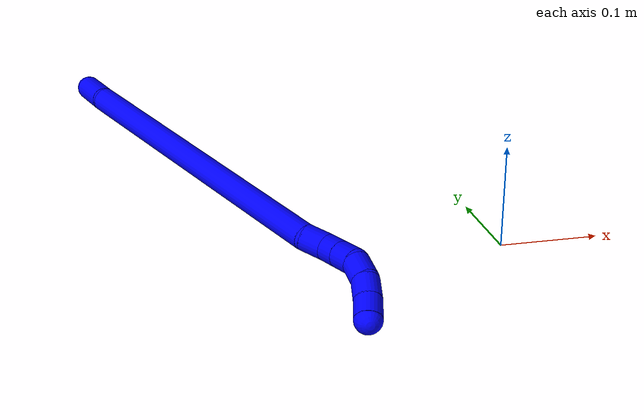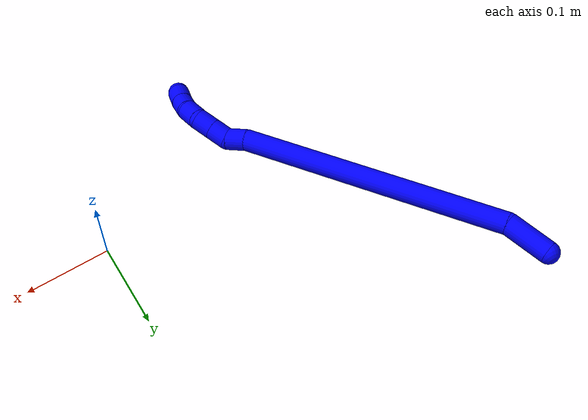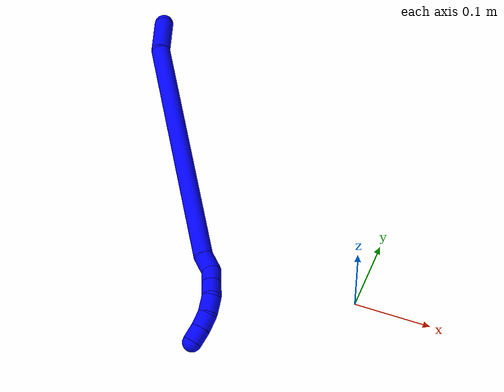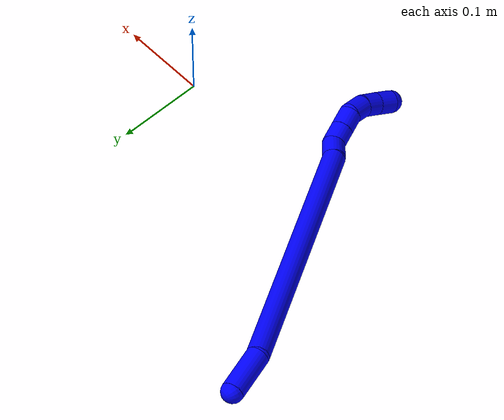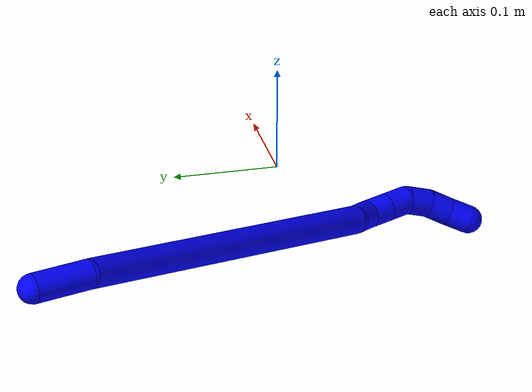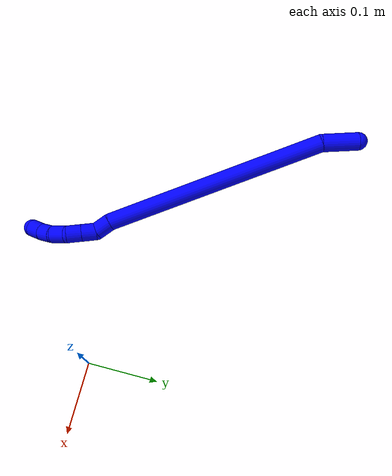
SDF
<sdf version="1.7">
 <world name="default">
  <plugin name="TubeGeneratorPlugin" filename="libtube_generator_plugin.so"/>
  <model name="photoneo_s_sensor">
   <static>1</static>
   <pose>0 0 2 1.57079 1.57079 3.14159</pose>
   <link name="link">
    <inertial><mass>0.1</mass></inertial>
    <sensor name="sensor" type="depth">
     <update_rate>30</update_rate>
     <camera>
      <horizontal_fov>1.22</horizontal_fov>
      <image><width>1920</width><height>1200</height><format>B8G8R8</format></image>
      <clip><near>0.1</near><far>4</far></clip>
      <depth_camera><output>points</output></depth_camera>
     </camera>
     <plugin name="camera_plugin" filename="libgazebo_ros_depth_camera.so">
      <baseline>0.2</baseline>
      <alwaysOn>1</alwaysOn>
      <updateRate>0.0</updateRate>
      <cameraName>camera_ir</cameraName>
      <imageTopicName>/camera/color/image_raw</imageTopicName>
      <cameraInfoTopicName>/camera/color/camera_info</cameraInfoTopicName>
      <depthImageTopicName>/camera/depth/image_raw</depthImageTopicName>
      <depthImageCameraInfoTopicName>/camera/depth/camera_info</depthImageCameraInfoTopicName>
      <pointCloudTopicName>/camera/depth/points</pointCloudTopicName>
      <frameName>fr_optical</frameName>
      <pointCloudCutoff>0.1</pointCloudCutoff>
      <pointCloudCutoffMax>2.0</pointCloudCutoffMax>
      <distortionK1>0</distortionK1>
      <distortionK2>0</distortionK2>
      <distortionK3>0</distortionK3>
      <distortionT1>0</distortionT1>
      <distortionT2>0</distortionT2>
      <CxPrime>0</CxPrime>
      <Cx>0</Cx>
      <Cy>0</Cy>
      <focalLength>0</focalLength>
      <hackBaseline>0</hackBaseline>
     </plugin>
    </sensor>
   </link>
  </model>
  <gravity>0 0 -9.8</gravity>
  <magnetic_field>6e-06 2.3e-05 -4.2e-05</magnetic_field>
  <atmosphere type="adiabatic"/>
  <physics name="default_physics" default="0" type="ode">
   <max_step_size>0.003</max_step_size>
   <real_time_factor>1</real_time_factor>
   <real_time_update_rate>1000</real_time_update_rate>
   <max_contacts>10000</max_contacts>
   <ode>
    <solver>
     <type>quick</type>
     <iters>100</iters>
     <sor>1.3</sor>
     <use_dynamic_moi_rescaling>0</use_dynamic_moi_rescaling>
    </solver>
    <constraints>
     <contact_max_correcting_vel>0</contact_max_correcting_vel>
     <contact_surface_layer>0.001</contact_surface_layer>
     <cfm>0</cfm>
     <erp>0.2</erp>
    </constraints>
   </ode>
  </physics>
  <scene><ambient>0.4 0.4 0.4 1</ambient><background>0.7 0.7 0.7 1</background><shadows>0</shadows></scene>
  <audio><device>default</device></audio>
  <spherical_coordinates>
   <surface_model>EARTH_WGS84</surface_model>
   <latitude_deg>0</latitude_deg>
   <longitude_deg>0</longitude_deg>
   <elevation>0</elevation>
   <heading_deg>0</heading_deg>
  </spherical_coordinates>
  <model name="bin">
   <static>1</static>
   <link name="bottom">
    <collision name="collision-bottom">
     <pose>0 0 -0.01 0 -0 0</pose>
     <geometry><box><size>0.8 0.6 0.02</size></box></geometry>
     <surface>
      <friction><ode><mu>100</mu><mu2>100</mu2></ode></friction>
      <contact><collide_bitmask>65535</collide_bitmask></contact>
     </surface>
    </collision>
   </link>
   <link name="west_wall">
    <collision name="collision-west_wall">
     <pose>-0.41 0 0.1 0 -0 0</pose>
     <geometry><box><size>0.02 0.6 0.2</size></box></geometry>
     <surface>
      <friction><ode><mu>100</mu><mu2>100</mu2></ode></friction>
      <contact><collide_bitmask>65535</collide_bitmask></contact>
     </surface>
    </collision>
   </link>
   <link name="east_wall">
    <collision name="collision-east_wall">
     <pose>0.41 0 0.1 0 -0 0</pose>
     <geometry><box><size>0.02 0.6 0.2</size></box></geometry>
     <surface>
      <friction><ode><mu>100</mu><mu2>100</mu2></ode></friction>
      <contact><collide_bitmask>65535</collide_bitmask></contact>
     </surface>
    </collision>
   </link>
   <link name="south_wall">
    <collision name="collision-south_wall">
     <pose>0 -0.31 0.1 0 -0 0</pose>
     <geometry><box><size>0.8 0.02 0.2</size></box></geometry>
     <surface>
      <friction><ode><mu>100</mu><mu2>100</mu2></ode></friction>
      <contact><collide_bitmask>65535</collide_bitmask></contact>
     </surface>
    </collision>
   </link>
   <link name="north_wall">
    <collision name="collision-north_wall">
     <pose>0 0.31 0.1 0 -0 0</pose>
     <geometry><box><size>0.8 0.02 0.2</size></box></geometry>
     <surface>
      <friction><ode><mu>100</mu><mu2>100</mu2></ode></friction>
      <contact><collide_bitmask>65535</collide_bitmask></contact>
     </surface>
    </collision>
   </link>
  </model>
  <model name="1">
   <static>0</static>
   <link name="1">
    <collision name="collision-cylinder-e_1_1_4">
     <pose>-0.007589 -0.006519 -0.023347 2.86929 -0.303393 -1.68021</pose>
     <geometry><cylinder><radius>0.0125</radius><length>0.050801</length></cylinder></geometry>
     <surface>
      <friction><ode><mu>1.16</mu><mu2>1.16</mu2><slip1>0</slip1><slip2>0</slip2></ode></friction>
      <contact><ode><kp>1e+06</kp><kd>1</kd><max_vel>0</max_vel><min_depth>0.001</min_depth></ode></contact>
     </surface>
    </collision>
    <visual name="visual-cylinder-e_1_1_4">
     <pose>-0.007589 -0.006519 -0.023347 2.86929 -0.303393 -1.68021</pose>
     <geometry><cylinder><radius>0.0125</radius><length>0.050801</length></cylinder></geometry>
     <material><ambient>0 0 1 1</ambient></material>
    </visual>
    <collision name="collision-cylinder-e_2_4_5">
     <pose>-0.075993 -0.095777 -0.1684 2.54454 -0.391875 -1.14571</pose>
     <geometry><cylinder><radius>0.0125</radius><length>0.318474</length></cylinder></geometry>
     <surface>
      <friction><ode><mu>1.16</mu><mu2>1.16</mu2><slip1>0</slip1><slip2>0</slip2></ode></friction>
      <contact><ode><kp>1e+06</kp><kd>1</kd><max_vel>0</max_vel><min_depth>0.001</min_depth></ode></contact>
     </surface>
    </collision>
    <visual name="visual-cylinder-e_2_4_5">
     <pose>-0.075993 -0.095777 -0.1684 2.54454 -0.391875 -1.14571</pose>
     <geometry><cylinder><radius>0.0125</radius><length>0.318474</length></cylinder></geometry>
     <material><ambient>0 0 1 1</ambient></material>
    </visual>
    <collision name="collision-cylinder-e_3_5_6">
     <pose>-0.143184 -0.185829 -0.296913 2.32039 -0.567814 -1.18095</pose>
     <geometry><cylinder><radius>0.0125</radius><length>0.023704</length></cylinder></geometry>
     <surface>
      <friction><ode><mu>1.16</mu><mu2>1.16</mu2><slip1>0</slip1><slip2>0</slip2></ode></friction>
      <contact><ode><kp>1e+06</kp><kd>1</kd><max_vel>0</max_vel><min_depth>0.001</min_depth></ode></contact>
     </surface>
    </collision>
    <visual name="visual-cylinder-e_3_5_6">
     <pose>-0.143184 -0.185829 -0.296913 2.32039 -0.567814 -1.18095</pose>
     <geometry><cylinder><radius>0.0125</radius><length>0.023704</length></cylinder></geometry>
     <material><ambient>0 0 1 1</ambient></material>
    </visual>
    <collision name="collision-cylinder-e_4_6_7">
     <pose>-0.153739 -0.195743 -0.31326 2.87548 -0.400137 -1.97476</pose>
     <geometry><cylinder><radius>0.0125</radius><length>0.021468</length></cylinder></geometry>
     <surface>
      <friction><ode><mu>1.16</mu><mu2>1.16</mu2><slip1>0</slip1><slip2>0</slip2></ode></friction>
      <contact><ode><kp>1e+06</kp><kd>1</kd><max_vel>0</max_vel><min_depth>0.001</min_depth></ode></contact>
     </surface>
    </collision>
    <visual name="visual-cylinder-e_4_6_7">
     <pose>-0.153739 -0.195743 -0.31326 2.87548 -0.400137 -1.97476</pose>
     <geometry><cylinder><radius>0.0125</radius><length>0.021468</length></cylinder></geometry>
     <material><ambient>0 0 1 1</ambient></material>
    </visual>
    <collision name="collision-cylinder-e_5_7_8">
     <pose>-0.1622 -0.200962 -0.332538 2.87896 -0.401265 -1.98963</pose>
     <geometry><cylinder><radius>0.0125</radius><length>0.021912</length></cylinder></geometry>
     <surface>
      <friction><ode><mu>1.16</mu><mu2>1.16</mu2><slip1>0</slip1><slip2>0</slip2></ode></friction>
      <contact><ode><kp>1e+06</kp><kd>1</kd><max_vel>0</max_vel><min_depth>0.001</min_depth></ode></contact>
     </surface>
    </collision>
    <visual name="visual-cylinder-e_5_7_8">
     <pose>-0.1622 -0.200962 -0.332538 2.87896 -0.401265 -1.98963</pose>
     <geometry><cylinder><radius>0.0125</radius><length>0.021912</length></cylinder></geometry>
     <material><ambient>0 0 1 1</ambient></material>
    </visual>
    <collision name="collision-cylinder-e_6_8_9">
     <pose>-0.166491 -0.20837 -0.352512 2.70381 -0.001112 -0.004998</pose>
     <geometry><cylinder><radius>0.0125</radius><length>0.022599</length></cylinder></geometry>
     <surface>
      <friction><ode><mu>1.16</mu><mu2>1.16</mu2><slip1>0</slip1><slip2>0</slip2></ode></friction>
      <contact><ode><kp>1e+06</kp><kd>1</kd><max_vel>0</max_vel><min_depth>0.001</min_depth></ode></contact>
     </surface>
    </collision>
    <visual name="visual-cylinder-e_6_8_9">
     <pose>-0.166491 -0.20837 -0.352512 2.70381 -0.001112 -0.004998</pose>
     <geometry><cylinder><radius>0.0125</radius><length>0.022599</length></cylinder></geometry>
     <material><ambient>0 0 1 1</ambient></material>
    </visual>
    <collision name="collision-cylinder-e_7_9_10">
     <pose>-0.16354 -0.217382 -0.371545 2.69426 0.294821 1.15665</pose>
     <geometry><cylinder><radius>0.0125</radius><length>0.020401</length></cylinder></geometry>
     <surface>
      <friction><ode><mu>1.16</mu><mu2>1.16</mu2><slip1>0</slip1><slip2>0</slip2></ode></friction>
      <contact><ode><kp>1e+06</kp><kd>1</kd><max_vel>0</max_vel><min_depth>0.001</min_depth></ode></contact>
     </surface>
    </collision>
    <visual name="visual-cylinder-e_7_9_10">
     <pose>-0.16354 -0.217382 -0.371545 2.69426 0.294821 1.15665</pose>
     <geometry><cylinder><radius>0.0125</radius><length>0.020401</length></cylinder></geometry>
     <material><ambient>0 0 1 1</ambient></material>
    </visual>
    <collision name="collision-cylinder-e_8_10_2">
     <pose>-0.157031 -0.224764 -0.389508 2.80953 0.350669 1.62635</pose>
     <geometry><cylinder><radius>0.0125</radius><length>0.020641</length></cylinder></geometry>
     <surface>
      <friction><ode><mu>1.16</mu><mu2>1.16</mu2><slip1>0</slip1><slip2>0</slip2></ode></friction>
      <contact><ode><kp>1e+06</kp><kd>1</kd><max_vel>0</max_vel><min_depth>0.001</min_depth></ode></contact>
     </surface>
    </collision>
    <visual name="visual-cylinder-e_8_10_2">
     <pose>-0.157031 -0.224764 -0.389508 2.80953 0.350669 1.62635</pose>
     <geometry><cylinder><radius>0.0125</radius><length>0.020641</length></cylinder></geometry>
     <material><ambient>0 0 1 1</ambient></material>
    </visual>
    <collision name="collision-sphere-2">
     <pose>-0.153485 -0.227924 -0.398671 0 -0 0</pose>
     <geometry><sphere><radius>0.0125</radius></sphere></geometry>
     <surface>
      <friction><ode><mu>1.16</mu><mu2>1.16</mu2><slip1>0</slip1><slip2>0</slip2></ode></friction>
      <contact><ode><kp>1e+06</kp><kd>1</kd><max_vel>0</max_vel><min_depth>0.001</min_depth></ode></contact>
     </surface>
    </collision>
    <visual name="visual-sphere-2">
     <pose>-0.153485 -0.227924 -0.398671 0 -0 0</pose>
     <geometry><sphere><radius>0.0125</radius></sphere></geometry>
     <material><ambient>0 0 1 1</ambient></material>
    </visual>
    <collision name="collision-sphere-10">
     <pose>-0.160576 -0.221604 -0.380345 0 -0 0</pose>
     <geometry><sphere><radius>0.0125</radius></sphere></geometry>
     <surface>
      <friction><ode><mu>1.16</mu><mu2>1.16</mu2><slip1>0</slip1><slip2>0</slip2></ode></friction>
      <contact><ode><kp>1e+06</kp><kd>1</kd><max_vel>0</max_vel><min_depth>0.001</min_depth></ode></contact>
     </surface>
    </collision>
    <visual name="visual-sphere-10">
     <pose>-0.160576 -0.221604 -0.380345 0 -0 0</pose>
     <geometry><sphere><radius>0.0125</radius></sphere></geometry>
     <material><ambient>0 0 1 1</ambient></material>
    </visual>
    <collision name="collision-sphere-9">
     <pose>-0.166504 -0.21316 -0.362745 0 -0 0</pose>
     <geometry><sphere><radius>0.0125</radius></sphere></geometry>
     <surface>
      <friction><ode><mu>1.16</mu><mu2>1.16</mu2><slip1>0</slip1><slip2>0</slip2></ode></friction>
      <contact><ode><kp>1e+06</kp><kd>1</kd><max_vel>0</max_vel><min_depth>0.001</min_depth></ode></contact>
     </surface>
    </collision>
    <visual name="visual-sphere-9">
     <pose>-0.166504 -0.21316 -0.362745 0 -0 0</pose>
     <geometry><sphere><radius>0.0125</radius></sphere></geometry>
     <material><ambient>0 0 1 1</ambient></material>
    </visual>
    <collision name="collision-sphere-4">
     <pose>-0.015177 -0.013039 -0.046694 0 -0 0</pose>
     <geometry><sphere><radius>0.0125</radius></sphere></geometry>
     <surface>
      <friction><ode><mu>1.16</mu><mu2>1.16</mu2><slip1>0</slip1><slip2>0</slip2></ode></friction>
      <contact><ode><kp>1e+06</kp><kd>1</kd><max_vel>0</max_vel><min_depth>0.001</min_depth></ode></contact>
     </surface>
    </collision>
    <visual name="visual-sphere-4">
     <pose>-0.015177 -0.013039 -0.046694 0 -0 0</pose>
     <geometry><sphere><radius>0.0125</radius></sphere></geometry>
     <material><ambient>0 0 1 1</ambient></material>
    </visual>
    <collision name="collision-sphere-1">
     <geometry><sphere><radius>0.0125</radius></sphere></geometry>
     <surface>
      <friction><ode><mu>1.16</mu><mu2>1.16</mu2><slip1>0</slip1><slip2>0</slip2></ode></friction>
      <contact><ode><kp>1e+06</kp><kd>1</kd><max_vel>0</max_vel><min_depth>0.001</min_depth></ode></contact>
     </surface>
    </collision>
    <visual name="visual-sphere-1">
     <geometry><sphere><radius>0.0125</radius></sphere></geometry>
     <material><ambient>0 0 1 1</ambient></material>
    </visual>
    <collision name="collision-sphere-8">
     <pose>-0.166479 -0.20358 -0.342278 0 -0 0</pose>
     <geometry><sphere><radius>0.0125</radius></sphere></geometry>
     <surface>
      <friction><ode><mu>1.16</mu><mu2>1.16</mu2><slip1>0</slip1><slip2>0</slip2></ode></friction>
      <contact><ode><kp>1e+06</kp><kd>1</kd><max_vel>0</max_vel><min_depth>0.001</min_depth></ode></contact>
     </surface>
    </collision>
    <visual name="visual-sphere-8">
     <pose>-0.166479 -0.20358 -0.342278 0 -0 0</pose>
     <geometry><sphere><radius>0.0125</radius></sphere></geometry>
     <material><ambient>0 0 1 1</ambient></material>
    </visual>
    <collision name="collision-sphere-5">
     <pose>-0.13681 -0.178515 -0.290105 0 -0 0</pose>
     <geometry><sphere><radius>0.0125</radius></sphere></geometry>
     <surface>
      <friction><ode><mu>1.16</mu><mu2>1.16</mu2><slip1>0</slip1><slip2>0</slip2></ode></friction>
      <contact><ode><kp>1e+06</kp><kd>1</kd><max_vel>0</max_vel><min_depth>0.001</min_depth></ode></contact>
     </surface>
    </collision>
    <visual name="visual-sphere-5">
     <pose>-0.13681 -0.178515 -0.290105 0 -0 0</pose>
     <geometry><sphere><radius>0.0125</radius></sphere></geometry>
     <material><ambient>0 0 1 1</ambient></material>
    </visual>
    <collision name="collision-sphere-6">
     <pose>-0.149558 -0.193143 -0.303722 0 -0 0</pose>
     <geometry><sphere><radius>0.0125</radius></sphere></geometry>
     <surface>
      <friction><ode><mu>1.16</mu><mu2>1.16</mu2><slip1>0</slip1><slip2>0</slip2></ode></friction>
      <contact><ode><kp>1e+06</kp><kd>1</kd><max_vel>0</max_vel><min_depth>0.001</min_depth></ode></contact>
     </surface>
    </collision>
    <visual name="visual-sphere-6">
     <pose>-0.149558 -0.193143 -0.303722 0 -0 0</pose>
     <geometry><sphere><radius>0.0125</radius></sphere></geometry>
     <material><ambient>0 0 1 1</ambient></material>
    </visual>
    <collision name="collision-sphere-7">
     <pose>-0.15792 -0.198343 -0.322798 0 -0 0</pose>
     <geometry><sphere><radius>0.0125</radius></sphere></geometry>
     <surface>
      <friction><ode><mu>1.16</mu><mu2>1.16</mu2><slip1>0</slip1><slip2>0</slip2></ode></friction>
      <contact><ode><kp>1e+06</kp><kd>1</kd><max_vel>0</max_vel><min_depth>0.001</min_depth></ode></contact>
     </surface>
    </collision>
    <visual name="visual-sphere-7">
     <pose>-0.15792 -0.198343 -0.322798 0 -0 0</pose>
     <geometry><sphere><radius>0.0125</radius></sphere></geometry>
     <material><ambient>0 0 1 1</ambient></material>
    </visual>
    <inertial>
     <pose>-0.090352 -0.115255 -0.198906 0 -0 0</pose>
     <mass>0.5</mass>
     <inertia>
      <ixx>-0.001272</ixx>
      <ixy>0</ixy>
      <ixz>0</ixz>
      <iyy>-0.002699</iyy>
      <iyz>0</iyz>
      <izz>0.002419</izz>
     </inertia>
    </inertial>
   </link>
   <pose>-0.380641 0.288502 0.102569 1.63756 0.54961 3.08435</pose>
  </model>
 </world>
</sdf>
